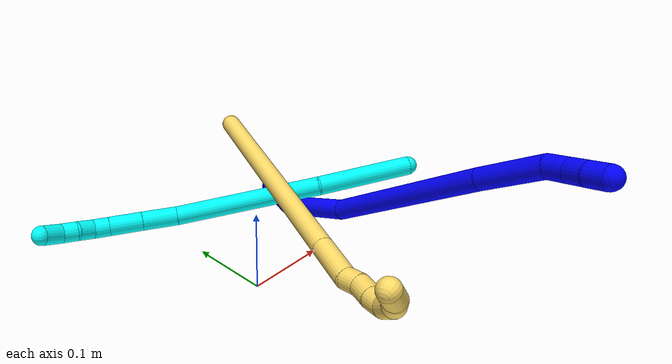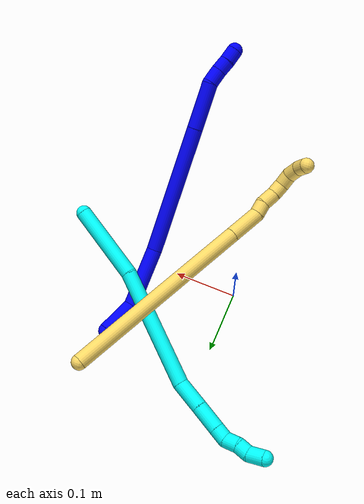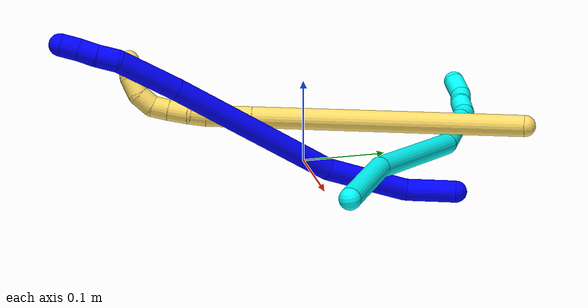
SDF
<sdf version="1.7">
 <world name="default">
  <model name="1">
   <static>0</static>
   <link name="1">
    <collision name="collision-cylinder-e_1_1_4">
     <pose>0.007695 -0.022865 0.015884 0.963631 0.269656 0.141632</pose>
     <geometry><cylinder><radius>0.0125</radius><length>0.057769</length></cylinder></geometry>
     <surface>
      <friction><ode><mu>1.16</mu><mu2>1.16</mu2><slip1>0</slip1><slip2>0</slip2></ode></friction>
      <contact><ode><kp>1e+06</kp><kd>1</kd><max_vel>0</max_vel><min_depth>0.001</min_depth></ode></contact>
     </surface>
    </collision>
    <visual name="visual-cylinder-e_1_1_4">
     <pose>0.007695 -0.022865 0.015884 0.963631 0.269656 0.141632</pose>
     <geometry><cylinder><radius>0.0125</radius><length>0.057769</length></cylinder></geometry>
     <material><ambient>0 0 1 1</ambient></material>
    </visual>
    <collision name="collision-cylinder-e_2_4_5">
     <pose>0.019196 -0.069936 0.074105 0.519403 0.077895 0.020707</pose>
     <geometry><cylinder><radius>0.0125</radius><length>0.097832</length></cylinder></geometry>
     <surface>
      <friction><ode><mu>1.16</mu><mu2>1.16</mu2><slip1>0</slip1><slip2>0</slip2></ode></friction>
      <contact><ode><kp>1e+06</kp><kd>1</kd><max_vel>0</max_vel><min_depth>0.001</min_depth></ode></contact>
     </surface>
    </collision>
    <visual name="visual-cylinder-e_2_4_5">
     <pose>0.019196 -0.069936 0.074105 0.519403 0.077895 0.020707</pose>
     <geometry><cylinder><radius>0.0125</radius><length>0.097832</length></cylinder></geometry>
     <material><ambient>0 0 1 1</ambient></material>
    </visual>
    <collision name="collision-cylinder-e_3_5_6">
     <pose>0.010165 -0.135884 0.209237 0.4227 -0.125498 -0.02696</pose>
     <geometry><cylinder><radius>0.0125</radius><length>0.205118</length></cylinder></geometry>
     <surface>
      <friction><ode><mu>1.16</mu><mu2>1.16</mu2><slip1>0</slip1><slip2>0</slip2></ode></friction>
      <contact><ode><kp>1e+06</kp><kd>1</kd><max_vel>0</max_vel><min_depth>0.001</min_depth></ode></contact>
     </surface>
    </collision>
    <visual name="visual-cylinder-e_3_5_6">
     <pose>0.010165 -0.135884 0.209237 0.4227 -0.125498 -0.02696</pose>
     <geometry><cylinder><radius>0.0125</radius><length>0.205118</length></cylinder></geometry>
     <material><ambient>0 0 1 1</ambient></material>
    </visual>
    <collision name="collision-cylinder-e_4_6_7">
     <pose>-0.006072 -0.192832 0.335743 0.423791 -0.091681 -0.019736</pose>
     <geometry><cylinder><radius>0.0125</radius><length>0.074273</length></cylinder></geometry>
     <surface>
      <friction><ode><mu>1.16</mu><mu2>1.16</mu2><slip1>0</slip1><slip2>0</slip2></ode></friction>
      <contact><ode><kp>1e+06</kp><kd>1</kd><max_vel>0</max_vel><min_depth>0.001</min_depth></ode></contact>
     </surface>
    </collision>
    <visual name="visual-cylinder-e_4_6_7">
     <pose>-0.006072 -0.192832 0.335743 0.423791 -0.091681 -0.019736</pose>
     <geometry><cylinder><radius>0.0125</radius><length>0.074273</length></cylinder></geometry>
     <material><ambient>0 0 1 1</ambient></material>
    </visual>
    <collision name="collision-cylinder-e_5_7_8">
     <pose>-0.008473 -0.21608 0.378211 0.742645 0.08376 0.032631</pose>
     <geometry><cylinder><radius>0.0125</radius><length>0.023864</length></cylinder></geometry>
     <surface>
      <friction><ode><mu>1.16</mu><mu2>1.16</mu2><slip1>0</slip1><slip2>0</slip2></ode></friction>
      <contact><ode><kp>1e+06</kp><kd>1</kd><max_vel>0</max_vel><min_depth>0.001</min_depth></ode></contact>
     </surface>
    </collision>
    <visual name="visual-cylinder-e_5_7_8">
     <pose>-0.008473 -0.21608 0.378211 0.742645 0.08376 0.032631</pose>
     <geometry><cylinder><radius>0.0125</radius><length>0.023864</length></cylinder></geometry>
     <material><ambient>0 0 1 1</ambient></material>
    </visual>
    <collision name="collision-cylinder-e_6_8_9">
     <pose>-0.007553 -0.231607 0.393879 0.825556 -0.007621 -0.003338</pose>
     <geometry><cylinder><radius>0.0125</radius><length>0.020375</length></cylinder></geometry>
     <surface>
      <friction><ode><mu>1.16</mu><mu2>1.16</mu2><slip1>0</slip1><slip2>0</slip2></ode></friction>
      <contact><ode><kp>1e+06</kp><kd>1</kd><max_vel>0</max_vel><min_depth>0.001</min_depth></ode></contact>
     </surface>
    </collision>
    <visual name="visual-cylinder-e_6_8_9">
     <pose>-0.007553 -0.231607 0.393879 0.825556 -0.007621 -0.003338</pose>
     <geometry><cylinder><radius>0.0125</radius><length>0.020375</length></cylinder></geometry>
     <material><ambient>0 0 1 1</ambient></material>
    </visual>
    <collision name="collision-cylinder-e_7_9_2">
     <pose>-0.006916 -0.246134 0.408387 0.747185 0.068893 0.027015</pose>
     <geometry><cylinder><radius>0.0125</radius><length>0.020769</length></cylinder></geometry>
     <surface>
      <friction><ode><mu>1.16</mu><mu2>1.16</mu2><slip1>0</slip1><slip2>0</slip2></ode></friction>
      <contact><ode><kp>1e+06</kp><kd>1</kd><max_vel>0</max_vel><min_depth>0.001</min_depth></ode></contact>
     </surface>
    </collision>
    <visual name="visual-cylinder-e_7_9_2">
     <pose>-0.006916 -0.246134 0.408387 0.747185 0.068893 0.027015</pose>
     <geometry><cylinder><radius>0.0125</radius><length>0.020769</length></cylinder></geometry>
     <material><ambient>0 0 1 1</ambient></material>
    </visual>
    <collision name="collision-sphere-2">
     <pose>-0.006201 -0.253175 0.415987 0 -0 0</pose>
     <geometry><sphere><radius>0.0125</radius></sphere></geometry>
     <surface>
      <friction><ode><mu>1.16</mu><mu2>1.16</mu2><slip1>0</slip1><slip2>0</slip2></ode></friction>
      <contact><ode><kp>1e+06</kp><kd>1</kd><max_vel>0</max_vel><min_depth>0.001</min_depth></ode></contact>
     </surface>
    </collision>
    <visual name="visual-sphere-2">
     <pose>-0.006201 -0.253175 0.415987 0 -0 0</pose>
     <geometry><sphere><radius>0.0125</radius></sphere></geometry>
     <material><ambient>0 0 1 1</ambient></material>
    </visual>
    <collision name="collision-sphere-9">
     <pose>-0.007631 -0.239094 0.400787 0 -0 0</pose>
     <geometry><sphere><radius>0.0125</radius></sphere></geometry>
     <surface>
      <friction><ode><mu>1.16</mu><mu2>1.16</mu2><slip1>0</slip1><slip2>0</slip2></ode></friction>
      <contact><ode><kp>1e+06</kp><kd>1</kd><max_vel>0</max_vel><min_depth>0.001</min_depth></ode></contact>
     </surface>
    </collision>
    <visual name="visual-sphere-9">
     <pose>-0.007631 -0.239094 0.400787 0 -0 0</pose>
     <geometry><sphere><radius>0.0125</radius></sphere></geometry>
     <material><ambient>0 0 1 1</ambient></material>
    </visual>
    <collision name="collision-sphere-4">
     <pose>0.01539 -0.045729 0.031769 0 -0 0</pose>
     <geometry><sphere><radius>0.0125</radius></sphere></geometry>
     <surface>
      <friction><ode><mu>1.16</mu><mu2>1.16</mu2><slip1>0</slip1><slip2>0</slip2></ode></friction>
      <contact><ode><kp>1e+06</kp><kd>1</kd><max_vel>0</max_vel><min_depth>0.001</min_depth></ode></contact>
     </surface>
    </collision>
    <visual name="visual-sphere-4">
     <pose>0.01539 -0.045729 0.031769 0 -0 0</pose>
     <geometry><sphere><radius>0.0125</radius></sphere></geometry>
     <material><ambient>0 0 1 1</ambient></material>
    </visual>
    <collision name="collision-sphere-1">
     <geometry><sphere><radius>0.0125</radius></sphere></geometry>
     <surface>
      <friction><ode><mu>1.16</mu><mu2>1.16</mu2><slip1>0</slip1><slip2>0</slip2></ode></friction>
      <contact><ode><kp>1e+06</kp><kd>1</kd><max_vel>0</max_vel><min_depth>0.001</min_depth></ode></contact>
     </surface>
    </collision>
    <visual name="visual-sphere-1">
     <geometry><sphere><radius>0.0125</radius></sphere></geometry>
     <material><ambient>0 0 1 1</ambient></material>
    </visual>
    <collision name="collision-sphere-8">
     <pose>-0.007475 -0.22412 0.38697 0 -0 0</pose>
     <geometry><sphere><radius>0.0125</radius></sphere></geometry>
     <surface>
      <friction><ode><mu>1.16</mu><mu2>1.16</mu2><slip1>0</slip1><slip2>0</slip2></ode></friction>
      <contact><ode><kp>1e+06</kp><kd>1</kd><max_vel>0</max_vel><min_depth>0.001</min_depth></ode></contact>
     </surface>
    </collision>
    <visual name="visual-sphere-8">
     <pose>-0.007475 -0.22412 0.38697 0 -0 0</pose>
     <geometry><sphere><radius>0.0125</radius></sphere></geometry>
     <material><ambient>0 0 1 1</ambient></material>
    </visual>
    <collision name="collision-sphere-5">
     <pose>0.023003 -0.094142 0.116441 0 -0 0</pose>
     <geometry><sphere><radius>0.0125</radius></sphere></geometry>
     <surface>
      <friction><ode><mu>1.16</mu><mu2>1.16</mu2><slip1>0</slip1><slip2>0</slip2></ode></friction>
      <contact><ode><kp>1e+06</kp><kd>1</kd><max_vel>0</max_vel><min_depth>0.001</min_depth></ode></contact>
     </surface>
    </collision>
    <visual name="visual-sphere-5">
     <pose>0.023003 -0.094142 0.116441 0 -0 0</pose>
     <geometry><sphere><radius>0.0125</radius></sphere></geometry>
     <material><ambient>0 0 1 1</ambient></material>
    </visual>
    <collision name="collision-sphere-6">
     <pose>-0.002672 -0.177625 0.302034 0 -0 0</pose>
     <geometry><sphere><radius>0.0125</radius></sphere></geometry>
     <surface>
      <friction><ode><mu>1.16</mu><mu2>1.16</mu2><slip1>0</slip1><slip2>0</slip2></ode></friction>
      <contact><ode><kp>1e+06</kp><kd>1</kd><max_vel>0</max_vel><min_depth>0.001</min_depth></ode></contact>
     </surface>
    </collision>
    <visual name="visual-sphere-6">
     <pose>-0.002672 -0.177625 0.302034 0 -0 0</pose>
     <geometry><sphere><radius>0.0125</radius></sphere></geometry>
     <material><ambient>0 0 1 1</ambient></material>
    </visual>
    <collision name="collision-sphere-7">
     <pose>-0.009472 -0.208039 0.369452 0 -0 0</pose>
     <geometry><sphere><radius>0.0125</radius></sphere></geometry>
     <surface>
      <friction><ode><mu>1.16</mu><mu2>1.16</mu2><slip1>0</slip1><slip2>0</slip2></ode></friction>
      <contact><ode><kp>1e+06</kp><kd>1</kd><max_vel>0</max_vel><min_depth>0.001</min_depth></ode></contact>
     </surface>
    </collision>
    <visual name="visual-sphere-7">
     <pose>-0.009472 -0.208039 0.369452 0 -0 0</pose>
     <geometry><sphere><radius>0.0125</radius></sphere></geometry>
     <material><ambient>0 0 1 1</ambient></material>
    </visual>
    <inertial>
     <pose>0.006914 -0.130689 0.20311 0 -0 0</pose>
     <mass>0.5</mass>
     <inertia>
      <ixx>0.000846</ixx>
      <ixy>0</ixy>
      <ixz>0</ixz>
      <iyy>0.000748</iyy>
      <iyz>0</iyz>
      <izz>0.000485</izz>
     </inertia>
    </inertial>
   </link>
   <pose>0.163742 0.138678 0.011489 0.1332 1.02609 -0.883614</pose>
  </model>
  <model name="3">
   <static>0</static>
   <link name="3">
    <collision name="collision-cylinder-e_1_1_4">
     <pose>-0.057282 0.027238 0.0049 -1.39279 -1.12073 0.966336</pose>
     <geometry><cylinder><radius>0.0125</radius><length>0.127234</length></cylinder></geometry>
     <surface>
      <friction><ode><mu>1.16</mu><mu2>1.16</mu2><slip1>0</slip1><slip2>0</slip2></ode></friction>
      <contact><ode><kp>1e+06</kp><kd>1</kd><max_vel>0</max_vel><min_depth>0.001</min_depth></ode></contact>
     </surface>
    </collision>
    <visual name="visual-cylinder-e_1_1_4">
     <pose>-0.057282 0.027238 0.0049 -1.39279 -1.12073 0.966336</pose>
     <geometry><cylinder><radius>0.0125</radius><length>0.127234</length></cylinder></geometry>
     <material><ambient>0.003922 1 0.996078 1</ambient></material>
    </visual>
    <collision name="collision-cylinder-e_2_4_5">
     <pose>-0.205463 0.080382 0.029146 -0.929389 -1.22905 0.680045</pose>
     <geometry><cylinder><radius>0.0125</radius><length>0.192956</length></cylinder></geometry>
     <surface>
      <friction><ode><mu>1.16</mu><mu2>1.16</mu2><slip1>0</slip1><slip2>0</slip2></ode></friction>
      <contact><ode><kp>1e+06</kp><kd>1</kd><max_vel>0</max_vel><min_depth>0.001</min_depth></ode></contact>
     </surface>
    </collision>
    <visual name="visual-cylinder-e_2_4_5">
     <pose>-0.205463 0.080382 0.029146 -0.929389 -1.22905 0.680045</pose>
     <geometry><cylinder><radius>0.0125</radius><length>0.192956</length></cylinder></geometry>
     <material><ambient>0.003922 1 0.996078 1</ambient></material>
    </visual>
    <collision name="collision-cylinder-e_3_5_6">
     <pose>-0.317347 0.116602 0.04776 -1.64166 -1.11301 1.17759</pose>
     <geometry><cylinder><radius>0.0125</radius><length>0.046788</length></cylinder></geometry>
     <surface>
      <friction><ode><mu>1.16</mu><mu2>1.16</mu2><slip1>0</slip1><slip2>0</slip2></ode></friction>
      <contact><ode><kp>1e+06</kp><kd>1</kd><max_vel>0</max_vel><min_depth>0.001</min_depth></ode></contact>
     </surface>
    </collision>
    <visual name="visual-cylinder-e_3_5_6">
     <pose>-0.317347 0.116602 0.04776 -1.64166 -1.11301 1.17759</pose>
     <geometry><cylinder><radius>0.0125</radius><length>0.046788</length></cylinder></geometry>
     <material><ambient>0.003922 1 0.996078 1</ambient></material>
    </visual>
    <collision name="collision-cylinder-e_4_6_7">
     <pose>-0.357397 0.136161 0.046651 -1.61154 -1.11895 1.15594</pose>
     <geometry><cylinder><radius>0.0125</radius><length>0.042382</length></cylinder></geometry>
     <surface>
      <friction><ode><mu>1.16</mu><mu2>1.16</mu2><slip1>0</slip1><slip2>0</slip2></ode></friction>
      <contact><ode><kp>1e+06</kp><kd>1</kd><max_vel>0</max_vel><min_depth>0.001</min_depth></ode></contact>
     </surface>
    </collision>
    <visual name="visual-cylinder-e_4_6_7">
     <pose>-0.357397 0.136161 0.046651 -1.61154 -1.11895 1.15594</pose>
     <geometry><cylinder><radius>0.0125</radius><length>0.042382</length></cylinder></geometry>
     <material><ambient>0.003922 1 0.996078 1</ambient></material>
    </visual>
    <collision name="collision-cylinder-e_5_7_8">
     <pose>-0.385859 0.150034 0.046072 -1.61449 -1.11276 1.15234</pose>
     <geometry><cylinder><radius>0.0125</radius><length>0.020955</length></cylinder></geometry>
     <surface>
      <friction><ode><mu>1.16</mu><mu2>1.16</mu2><slip1>0</slip1><slip2>0</slip2></ode></friction>
      <contact><ode><kp>1e+06</kp><kd>1</kd><max_vel>0</max_vel><min_depth>0.001</min_depth></ode></contact>
     </surface>
    </collision>
    <visual name="visual-cylinder-e_5_7_8">
     <pose>-0.385859 0.150034 0.046072 -1.61449 -1.11276 1.15234</pose>
     <geometry><cylinder><radius>0.0125</radius><length>0.020955</length></cylinder></geometry>
     <material><ambient>0.003922 1 0.996078 1</ambient></material>
    </visual>
    <collision name="collision-cylinder-e_6_8_9">
     <pose>-0.402303 0.162367 0.041713 -2.06552 -0.677787 1.06707</pose>
     <geometry><cylinder><radius>0.0125</radius><length>0.022476</length></cylinder></geometry>
     <surface>
      <friction><ode><mu>1.16</mu><mu2>1.16</mu2><slip1>0</slip1><slip2>0</slip2></ode></friction>
      <contact><ode><kp>1e+06</kp><kd>1</kd><max_vel>0</max_vel><min_depth>0.001</min_depth></ode></contact>
     </surface>
    </collision>
    <visual name="visual-cylinder-e_6_8_9">
     <pose>-0.402303 0.162367 0.041713 -2.06552 -0.677787 1.06707</pose>
     <geometry><cylinder><radius>0.0125</radius><length>0.022476</length></cylinder></geometry>
     <material><ambient>0.003922 1 0.996078 1</ambient></material>
    </visual>
    <collision name="collision-cylinder-e_7_9_10">
     <pose>-0.417491 0.175667 0.035916 -1.85601 -0.949268 1.20267</pose>
     <geometry><cylinder><radius>0.0125</radius><length>0.020027</length></cylinder></geometry>
     <surface>
      <friction><ode><mu>1.16</mu><mu2>1.16</mu2><slip1>0</slip1><slip2>0</slip2></ode></friction>
      <contact><ode><kp>1e+06</kp><kd>1</kd><max_vel>0</max_vel><min_depth>0.001</min_depth></ode></contact>
     </surface>
    </collision>
    <visual name="visual-cylinder-e_7_9_10">
     <pose>-0.417491 0.175667 0.035916 -1.85601 -0.949268 1.20267</pose>
     <geometry><cylinder><radius>0.0125</radius><length>0.020027</length></cylinder></geometry>
     <material><ambient>0.003922 1 0.996078 1</ambient></material>
    </visual>
    <collision name="collision-cylinder-e_8_10_2">
     <pose>-0.432622 0.191103 0.028031 -2.13622 -0.54024 0.93308</pose>
     <geometry><cylinder><radius>0.0125</radius><length>0.027181</length></cylinder></geometry>
     <surface>
      <friction><ode><mu>1.16</mu><mu2>1.16</mu2><slip1>0</slip1><slip2>0</slip2></ode></friction>
      <contact><ode><kp>1e+06</kp><kd>1</kd><max_vel>0</max_vel><min_depth>0.001</min_depth></ode></contact>
     </surface>
    </collision>
    <visual name="visual-cylinder-e_8_10_2">
     <pose>-0.432622 0.191103 0.028031 -2.13622 -0.54024 0.93308</pose>
     <geometry><cylinder><radius>0.0125</radius><length>0.027181</length></cylinder></geometry>
     <material><ambient>0.003922 1 0.996078 1</ambient></material>
    </visual>
    <collision name="collision-sphere-2">
     <pose>-0.439613 0.200944 0.021786 0 -0 0</pose>
     <geometry><sphere><radius>0.0125</radius></sphere></geometry>
     <surface>
      <friction><ode><mu>1.16</mu><mu2>1.16</mu2><slip1>0</slip1><slip2>0</slip2></ode></friction>
      <contact><ode><kp>1e+06</kp><kd>1</kd><max_vel>0</max_vel><min_depth>0.001</min_depth></ode></contact>
     </surface>
    </collision>
    <visual name="visual-sphere-2">
     <pose>-0.439613 0.200944 0.021786 0 -0 0</pose>
     <geometry><sphere><radius>0.0125</radius></sphere></geometry>
     <material><ambient>0.003922 1 0.996078 1</ambient></material>
    </visual>
    <collision name="collision-sphere-10">
     <pose>-0.425632 0.181262 0.034275 0 -0 0</pose>
     <geometry><sphere><radius>0.0125</radius></sphere></geometry>
     <surface>
      <friction><ode><mu>1.16</mu><mu2>1.16</mu2><slip1>0</slip1><slip2>0</slip2></ode></friction>
      <contact><ode><kp>1e+06</kp><kd>1</kd><max_vel>0</max_vel><min_depth>0.001</min_depth></ode></contact>
     </surface>
    </collision>
    <visual name="visual-sphere-10">
     <pose>-0.425632 0.181262 0.034275 0 -0 0</pose>
     <geometry><sphere><radius>0.0125</radius></sphere></geometry>
     <material><ambient>0.003922 1 0.996078 1</ambient></material>
    </visual>
    <collision name="collision-sphere-9">
     <pose>-0.40935 0.170072 0.037557 0 -0 0</pose>
     <geometry><sphere><radius>0.0125</radius></sphere></geometry>
     <surface>
      <friction><ode><mu>1.16</mu><mu2>1.16</mu2><slip1>0</slip1><slip2>0</slip2></ode></friction>
      <contact><ode><kp>1e+06</kp><kd>1</kd><max_vel>0</max_vel><min_depth>0.001</min_depth></ode></contact>
     </surface>
    </collision>
    <visual name="visual-sphere-9">
     <pose>-0.40935 0.170072 0.037557 0 -0 0</pose>
     <geometry><sphere><radius>0.0125</radius></sphere></geometry>
     <material><ambient>0.003922 1 0.996078 1</ambient></material>
    </visual>
    <collision name="collision-sphere-4">
     <pose>-0.114564 0.054476 0.009801 0 -0 0</pose>
     <geometry><sphere><radius>0.0125</radius></sphere></geometry>
     <surface>
      <friction><ode><mu>1.16</mu><mu2>1.16</mu2><slip1>0</slip1><slip2>0</slip2></ode></friction>
      <contact><ode><kp>1e+06</kp><kd>1</kd><max_vel>0</max_vel><min_depth>0.001</min_depth></ode></contact>
     </surface>
    </collision>
    <visual name="visual-sphere-4">
     <pose>-0.114564 0.054476 0.009801 0 -0 0</pose>
     <geometry><sphere><radius>0.0125</radius></sphere></geometry>
     <material><ambient>0.003922 1 0.996078 1</ambient></material>
    </visual>
    <collision name="collision-sphere-1">
     <geometry><sphere><radius>0.0125</radius></sphere></geometry>
     <surface>
      <friction><ode><mu>1.16</mu><mu2>1.16</mu2><slip1>0</slip1><slip2>0</slip2></ode></friction>
      <contact><ode><kp>1e+06</kp><kd>1</kd><max_vel>0</max_vel><min_depth>0.001</min_depth></ode></contact>
     </surface>
    </collision>
    <visual name="visual-sphere-1">
     <geometry><sphere><radius>0.0125</radius></sphere></geometry>
     <material><ambient>0.003922 1 0.996078 1</ambient></material>
    </visual>
    <collision name="collision-sphere-8">
     <pose>-0.395256 0.154663 0.045869 0 -0 0</pose>
     <geometry><sphere><radius>0.0125</radius></sphere></geometry>
     <surface>
      <friction><ode><mu>1.16</mu><mu2>1.16</mu2><slip1>0</slip1><slip2>0</slip2></ode></friction>
      <contact><ode><kp>1e+06</kp><kd>1</kd><max_vel>0</max_vel><min_depth>0.001</min_depth></ode></contact>
     </surface>
    </collision>
    <visual name="visual-sphere-8">
     <pose>-0.395256 0.154663 0.045869 0 -0 0</pose>
     <geometry><sphere><radius>0.0125</radius></sphere></geometry>
     <material><ambient>0.003922 1 0.996078 1</ambient></material>
    </visual>
    <collision name="collision-sphere-5">
     <pose>-0.296361 0.106289 0.048492 0 -0 0</pose>
     <geometry><sphere><radius>0.0125</radius></sphere></geometry>
     <surface>
      <friction><ode><mu>1.16</mu><mu2>1.16</mu2><slip1>0</slip1><slip2>0</slip2></ode></friction>
      <contact><ode><kp>1e+06</kp><kd>1</kd><max_vel>0</max_vel><min_depth>0.001</min_depth></ode></contact>
     </surface>
    </collision>
    <visual name="visual-sphere-5">
     <pose>-0.296361 0.106289 0.048492 0 -0 0</pose>
     <geometry><sphere><radius>0.0125</radius></sphere></geometry>
     <material><ambient>0.003922 1 0.996078 1</ambient></material>
    </visual>
    <collision name="collision-sphere-6">
     <pose>-0.338332 0.126916 0.047028 0 -0 0</pose>
     <geometry><sphere><radius>0.0125</radius></sphere></geometry>
     <surface>
      <friction><ode><mu>1.16</mu><mu2>1.16</mu2><slip1>0</slip1><slip2>0</slip2></ode></friction>
      <contact><ode><kp>1e+06</kp><kd>1</kd><max_vel>0</max_vel><min_depth>0.001</min_depth></ode></contact>
     </surface>
    </collision>
    <visual name="visual-sphere-6">
     <pose>-0.338332 0.126916 0.047028 0 -0 0</pose>
     <geometry><sphere><radius>0.0125</radius></sphere></geometry>
     <material><ambient>0.003922 1 0.996078 1</ambient></material>
    </visual>
    <collision name="collision-sphere-7">
     <pose>-0.376461 0.145406 0.046274 0 -0 0</pose>
     <geometry><sphere><radius>0.0125</radius></sphere></geometry>
     <surface>
      <friction><ode><mu>1.16</mu><mu2>1.16</mu2><slip1>0</slip1><slip2>0</slip2></ode></friction>
      <contact><ode><kp>1e+06</kp><kd>1</kd><max_vel>0</max_vel><min_depth>0.001</min_depth></ode></contact>
     </surface>
    </collision>
    <visual name="visual-sphere-7">
     <pose>-0.376461 0.145406 0.046274 0 -0 0</pose>
     <geometry><sphere><radius>0.0125</radius></sphere></geometry>
     <material><ambient>0.003922 1 0.996078 1</ambient></material>
    </visual>
    <inertial>
     <pose>-0.228354 0.091416 0.027687 0 -0 0</pose>
     <mass>0.5</mass>
     <inertia>
      <ixx>0.000376</ixx>
      <ixy>0</ixy>
      <ixz>0</ixz>
      <iyy>0.000952</iyy>
      <iyz>0</iyz>
      <izz>0.000502</izz>
     </inertia>
    </inertial>
   </link>
   <pose>0.271814 -0.01592 0.061511 -2.98071 0.053008 -0.954765</pose>
  </model>
  <model name="5">
   <static>0</static>
   <link name="5">
    <collision name="collision-cylinder-e_1_1_4">
     <pose>0.005505 -0.132166 -0.086377 2.14967 0.034852 0.064397</pose>
     <geometry><cylinder><radius>0.0125</radius><length>0.315969</length></cylinder></geometry>
     <surface>
      <friction><ode><mu>1.16</mu><mu2>1.16</mu2><slip1>0</slip1><slip2>0</slip2></ode></friction>
      <contact><ode><kp>1e+06</kp><kd>1</kd><max_vel>0</max_vel><min_depth>0.001</min_depth></ode></contact>
     </surface>
    </collision>
    <visual name="visual-cylinder-e_1_1_4">
     <pose>0.005505 -0.132166 -0.086377 2.14967 0.034852 0.064397</pose>
     <geometry><cylinder><radius>0.0125</radius><length>0.315969</length></cylinder></geometry>
     <material><ambient>1 0.858824 0.4 1</ambient></material>
    </visual>
    <collision name="collision-cylinder-e_2_4_5">
     <pose>0.012074 -0.287593 -0.187917 2.14848 0.038296 0.070656</pose>
     <geometry><cylinder><radius>0.0125</radius><length>0.055575</length></cylinder></geometry>
     <surface>
      <friction><ode><mu>1.16</mu><mu2>1.16</mu2><slip1>0</slip1><slip2>0</slip2></ode></friction>
      <contact><ode><kp>1e+06</kp><kd>1</kd><max_vel>0</max_vel><min_depth>0.001</min_depth></ode></contact>
     </surface>
    </collision>
    <visual name="visual-cylinder-e_2_4_5">
     <pose>0.012074 -0.287593 -0.187917 2.14848 0.038296 0.070656</pose>
     <geometry><cylinder><radius>0.0125</radius><length>0.055575</length></cylinder></geometry>
     <material><ambient>1 0.858824 0.4 1</ambient></material>
    </visual>
    <collision name="collision-cylinder-e_3_5_6">
     <pose>0.012209 -0.320839 -0.205433 1.8022 -0.090301 -0.114006</pose>
     <geometry><cylinder><radius>0.0125</radius><length>0.020601</length></cylinder></geometry>
     <surface>
      <friction><ode><mu>1.16</mu><mu2>1.16</mu2><slip1>0</slip1><slip2>0</slip2></ode></friction>
      <contact><ode><kp>1e+06</kp><kd>1</kd><max_vel>0</max_vel><min_depth>0.001</min_depth></ode></contact>
     </surface>
    </collision>
    <visual name="visual-cylinder-e_3_5_6">
     <pose>0.012209 -0.320839 -0.205433 1.8022 -0.090301 -0.114006</pose>
     <geometry><cylinder><radius>0.0125</radius><length>0.020601</length></cylinder></geometry>
     <material><ambient>1 0.858824 0.4 1</ambient></material>
    </visual>
    <collision name="collision-cylinder-e_4_6_7">
     <pose>0.010038 -0.341035 -0.214178 2.13005 -0.102712 -0.185093</pose>
     <geometry><cylinder><radius>0.0125</radius><length>0.024222</length></cylinder></geometry>
     <surface>
      <friction><ode><mu>1.16</mu><mu2>1.16</mu2><slip1>0</slip1><slip2>0</slip2></ode></friction>
      <contact><ode><kp>1e+06</kp><kd>1</kd><max_vel>0</max_vel><min_depth>0.001</min_depth></ode></contact>
     </surface>
    </collision>
    <visual name="visual-cylinder-e_4_6_7">
     <pose>0.010038 -0.341035 -0.214178 2.13005 -0.102712 -0.185093</pose>
     <geometry><cylinder><radius>0.0125</radius><length>0.024222</length></cylinder></geometry>
     <material><ambient>1 0.858824 0.4 1</ambient></material>
    </visual>
    <collision name="collision-cylinder-e_5_7_8">
     <pose>0.007133 -0.360304 -0.22462 1.9914 -0.166097 -0.255443</pose>
     <geometry><cylinder><radius>0.0125</radius><length>0.020119</length></cylinder></geometry>
     <surface>
      <friction><ode><mu>1.16</mu><mu2>1.16</mu2><slip1>0</slip1><slip2>0</slip2></ode></friction>
      <contact><ode><kp>1e+06</kp><kd>1</kd><max_vel>0</max_vel><min_depth>0.001</min_depth></ode></contact>
     </surface>
    </collision>
    <visual name="visual-cylinder-e_5_7_8">
     <pose>0.007133 -0.360304 -0.22462 1.9914 -0.166097 -0.255443</pose>
     <geometry><cylinder><radius>0.0125</radius><length>0.020119</length></cylinder></geometry>
     <material><ambient>1 0.858824 0.4 1</ambient></material>
    </visual>
    <collision name="collision-cylinder-e_6_8_9">
     <pose>-0.000884 -0.377232 -0.231383 1.9026 -0.651842 -0.885133</pose>
     <geometry><cylinder><radius>0.0125</radius><length>0.020948</length></cylinder></geometry>
     <surface>
      <friction><ode><mu>1.16</mu><mu2>1.16</mu2><slip1>0</slip1><slip2>0</slip2></ode></friction>
      <contact><ode><kp>1e+06</kp><kd>1</kd><max_vel>0</max_vel><min_depth>0.001</min_depth></ode></contact>
     </surface>
    </collision>
    <visual name="visual-cylinder-e_6_8_9">
     <pose>-0.000884 -0.377232 -0.231383 1.9026 -0.651842 -0.885133</pose>
     <geometry><cylinder><radius>0.0125</radius><length>0.020948</length></cylinder></geometry>
     <material><ambient>1 0.858824 0.4 1</ambient></material>
    </visual>
    <collision name="collision-cylinder-e_7_9_10">
     <pose>-0.016699 -0.389287 -0.237875 2.3056 -1.03346 -1.81465</pose>
     <geometry><cylinder><radius>0.0125</radius><length>0.022026</length></cylinder></geometry>
     <surface>
      <friction><ode><mu>1.16</mu><mu2>1.16</mu2><slip1>0</slip1><slip2>0</slip2></ode></friction>
      <contact><ode><kp>1e+06</kp><kd>1</kd><max_vel>0</max_vel><min_depth>0.001</min_depth></ode></contact>
     </surface>
    </collision>
    <visual name="visual-cylinder-e_7_9_10">
     <pose>-0.016699 -0.389287 -0.237875 2.3056 -1.03346 -1.81465</pose>
     <geometry><cylinder><radius>0.0125</radius><length>0.022026</length></cylinder></geometry>
     <material><ambient>1 0.858824 0.4 1</ambient></material>
    </visual>
    <collision name="collision-cylinder-e_8_10_2">
     <pose>-0.035865 -0.393931 -0.244983 3.00382 -1.23752 -2.9484</pose>
     <geometry><cylinder><radius>0.0125</radius><length>0.02054</length></cylinder></geometry>
     <surface>
      <friction><ode><mu>1.16</mu><mu2>1.16</mu2><slip1>0</slip1><slip2>0</slip2></ode></friction>
      <contact><ode><kp>1e+06</kp><kd>1</kd><max_vel>0</max_vel><min_depth>0.001</min_depth></ode></contact>
     </surface>
    </collision>
    <visual name="visual-cylinder-e_8_10_2">
     <pose>-0.035865 -0.393931 -0.244983 3.00382 -1.23752 -2.9484</pose>
     <geometry><cylinder><radius>0.0125</radius><length>0.02054</length></cylinder></geometry>
     <material><ambient>1 0.858824 0.4 1</ambient></material>
    </visual>
    <collision name="collision-sphere-2">
     <pose>-0.04557 -0.394393 -0.248311 0 -0 0</pose>
     <geometry><sphere><radius>0.0125</radius></sphere></geometry>
     <surface>
      <friction><ode><mu>1.16</mu><mu2>1.16</mu2><slip1>0</slip1><slip2>0</slip2></ode></friction>
      <contact><ode><kp>1e+06</kp><kd>1</kd><max_vel>0</max_vel><min_depth>0.001</min_depth></ode></contact>
     </surface>
    </collision>
    <visual name="visual-sphere-2">
     <pose>-0.04557 -0.394393 -0.248311 0 -0 0</pose>
     <geometry><sphere><radius>0.0125</radius></sphere></geometry>
     <material><ambient>1 0.858824 0.4 1</ambient></material>
    </visual>
    <collision name="collision-sphere-10">
     <pose>-0.02616 -0.39347 -0.241655 0 -0 0</pose>
     <geometry><sphere><radius>0.0125</radius></sphere></geometry>
     <surface>
      <friction><ode><mu>1.16</mu><mu2>1.16</mu2><slip1>0</slip1><slip2>0</slip2></ode></friction>
      <contact><ode><kp>1e+06</kp><kd>1</kd><max_vel>0</max_vel><min_depth>0.001</min_depth></ode></contact>
     </surface>
    </collision>
    <visual name="visual-sphere-10">
     <pose>-0.02616 -0.39347 -0.241655 0 -0 0</pose>
     <geometry><sphere><radius>0.0125</radius></sphere></geometry>
     <material><ambient>1 0.858824 0.4 1</ambient></material>
    </visual>
    <collision name="collision-sphere-9">
     <pose>-0.007238 -0.385105 -0.234096 0 -0 0</pose>
     <geometry><sphere><radius>0.0125</radius></sphere></geometry>
     <surface>
      <friction><ode><mu>1.16</mu><mu2>1.16</mu2><slip1>0</slip1><slip2>0</slip2></ode></friction>
      <contact><ode><kp>1e+06</kp><kd>1</kd><max_vel>0</max_vel><min_depth>0.001</min_depth></ode></contact>
     </surface>
    </collision>
    <visual name="visual-sphere-9">
     <pose>-0.007238 -0.385105 -0.234096 0 -0 0</pose>
     <geometry><sphere><radius>0.0125</radius></sphere></geometry>
     <material><ambient>1 0.858824 0.4 1</ambient></material>
    </visual>
    <collision name="collision-sphere-4">
     <pose>0.01101 -0.264331 -0.172754 0 -0 0</pose>
     <geometry><sphere><radius>0.0125</radius></sphere></geometry>
     <surface>
      <friction><ode><mu>1.16</mu><mu2>1.16</mu2><slip1>0</slip1><slip2>0</slip2></ode></friction>
      <contact><ode><kp>1e+06</kp><kd>1</kd><max_vel>0</max_vel><min_depth>0.001</min_depth></ode></contact>
     </surface>
    </collision>
    <visual name="visual-sphere-4">
     <pose>0.01101 -0.264331 -0.172754 0 -0 0</pose>
     <geometry><sphere><radius>0.0125</radius></sphere></geometry>
     <material><ambient>1 0.858824 0.4 1</ambient></material>
    </visual>
    <collision name="collision-sphere-1">
     <geometry><sphere><radius>0.0125</radius></sphere></geometry>
     <surface>
      <friction><ode><mu>1.16</mu><mu2>1.16</mu2><slip1>0</slip1><slip2>0</slip2></ode></friction>
      <contact><ode><kp>1e+06</kp><kd>1</kd><max_vel>0</max_vel><min_depth>0.001</min_depth></ode></contact>
     </surface>
    </collision>
    <visual name="visual-sphere-1">
     <geometry><sphere><radius>0.0125</radius></sphere></geometry>
     <material><ambient>1 0.858824 0.4 1</ambient></material>
    </visual>
    <collision name="collision-sphere-8">
     <pose>0.00547 -0.36936 -0.228671 0 -0 0</pose>
     <geometry><sphere><radius>0.0125</radius></sphere></geometry>
     <surface>
      <friction><ode><mu>1.16</mu><mu2>1.16</mu2><slip1>0</slip1><slip2>0</slip2></ode></friction>
      <contact><ode><kp>1e+06</kp><kd>1</kd><max_vel>0</max_vel><min_depth>0.001</min_depth></ode></contact>
     </surface>
    </collision>
    <visual name="visual-sphere-8">
     <pose>0.00547 -0.36936 -0.228671 0 -0 0</pose>
     <geometry><sphere><radius>0.0125</radius></sphere></geometry>
     <material><ambient>1 0.858824 0.4 1</ambient></material>
    </visual>
    <collision name="collision-sphere-5">
     <pose>0.013138 -0.310854 -0.203081 0 -0 0</pose>
     <geometry><sphere><radius>0.0125</radius></sphere></geometry>
     <surface>
      <friction><ode><mu>1.16</mu><mu2>1.16</mu2><slip1>0</slip1><slip2>0</slip2></ode></friction>
      <contact><ode><kp>1e+06</kp><kd>1</kd><max_vel>0</max_vel><min_depth>0.001</min_depth></ode></contact>
     </surface>
    </collision>
    <visual name="visual-sphere-5">
     <pose>0.013138 -0.310854 -0.203081 0 -0 0</pose>
     <geometry><sphere><radius>0.0125</radius></sphere></geometry>
     <material><ambient>1 0.858824 0.4 1</ambient></material>
    </visual>
    <collision name="collision-sphere-6">
     <pose>0.01128 -0.330824 -0.207786 0 -0 0</pose>
     <geometry><sphere><radius>0.0125</radius></sphere></geometry>
     <surface>
      <friction><ode><mu>1.16</mu><mu2>1.16</mu2><slip1>0</slip1><slip2>0</slip2></ode></friction>
      <contact><ode><kp>1e+06</kp><kd>1</kd><max_vel>0</max_vel><min_depth>0.001</min_depth></ode></contact>
     </surface>
    </collision>
    <visual name="visual-sphere-6">
     <pose>0.01128 -0.330824 -0.207786 0 -0 0</pose>
     <geometry><sphere><radius>0.0125</radius></sphere></geometry>
     <material><ambient>1 0.858824 0.4 1</ambient></material>
    </visual>
    <collision name="collision-sphere-7">
     <pose>0.008797 -0.351247 -0.220569 0 -0 0</pose>
     <geometry><sphere><radius>0.0125</radius></sphere></geometry>
     <surface>
      <friction><ode><mu>1.16</mu><mu2>1.16</mu2><slip1>0</slip1><slip2>0</slip2></ode></friction>
      <contact><ode><kp>1e+06</kp><kd>1</kd><max_vel>0</max_vel><min_depth>0.001</min_depth></ode></contact>
     </surface>
    </collision>
    <visual name="visual-sphere-7">
     <pose>0.008797 -0.351247 -0.220569 0 -0 0</pose>
     <geometry><sphere><radius>0.0125</radius></sphere></geometry>
     <material><ambient>1 0.858824 0.4 1</ambient></material>
    </visual>
    <inertial>
     <pose>0.003851 -0.208861 -0.133587 0 -0 0</pose>
     <mass>0.5</mass>
     <inertia>
      <ixx>0.00282</ixx>
      <ixy>0</ixy>
      <ixz>0</ixz>
      <iyy>-0.001307</iyy>
      <iyz>0</iyz>
      <izz>0.002122</izz>
     </inertia>
    </inertial>
   </link>
   <pose>0.163233 0.219066 0.084137 -0.577573 1.28593 -0.432104</pose>
  </model>
 </world>
</sdf>
